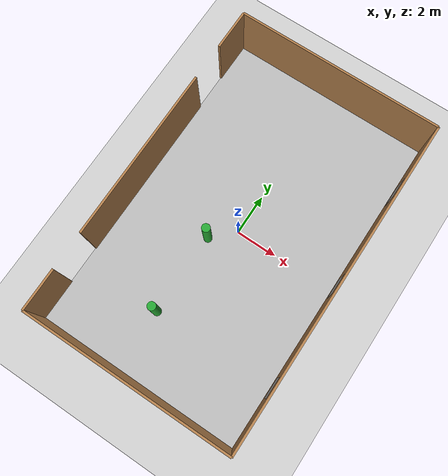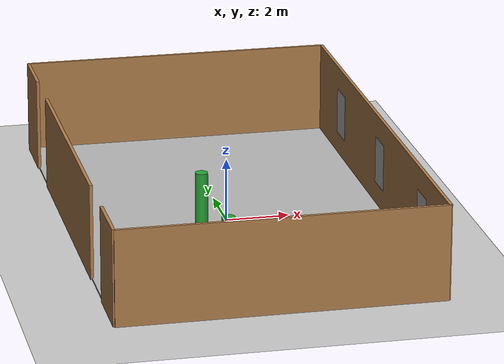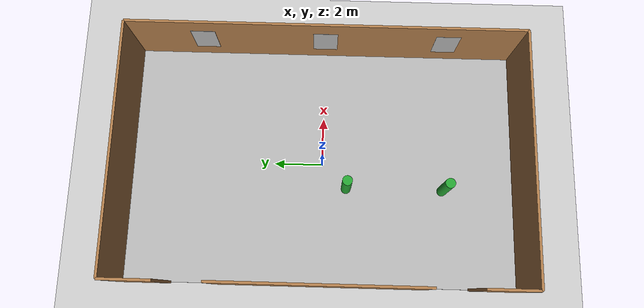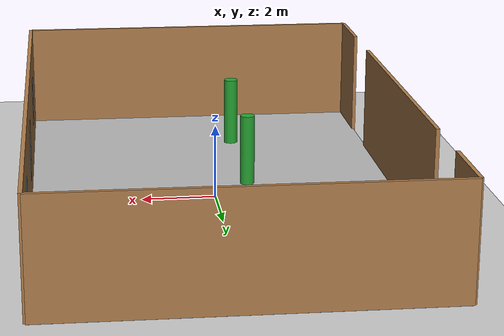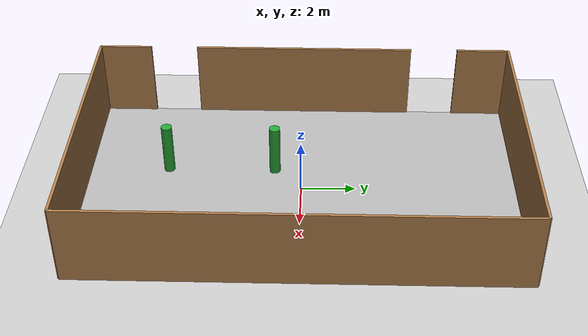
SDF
<sdf version="1.5">
 <world name="default">
  <light type="directional" name="sun">
   <cast_shadows>false</cast_shadows>
   <pose>0 0 100 0 0 0</pose>
   <diffuse>0.8 0.8 0.8 1</diffuse>
   <specular>0.9 0.9 0.9 1</specular>
   <attenuation>
    <range>1000</range>
    <constant>0.9</constant>
    <linear>0.01</linear>
    <quadratic>0.001</quadratic>
   </attenuation>
   <direction>0.2 0.2 -0.9</direction>
  </light>
  <scene><shadows>0</shadows></scene>
  <include><uri>model://ground_plane</uri></include>
  <physics type="ode">
   <gravity>0 0 -9.8066</gravity>
   <ode>
    <solver>
     <type>quick</type>
     <iters>150</iters>
     <sor>1.3</sor>
     <use_dynamic_moi_rescaling>0</use_dynamic_moi_rescaling>
    </solver>
    <constraints>
     <cfm>0.00001</cfm>
     <erp>0.2</erp>
     <contact_max_correcting_vel>1000</contact_max_correcting_vel>
     <contact_surface_layer>0.01</contact_surface_layer>
    </constraints>
   </ode>
   <max_step_size>0.004</max_step_size>
   <real_time_factor>1000.0</real_time_factor>
   <real_time_update_rate>250</real_time_update_rate>
   <magnetic_field>6.0e-6 2.3e-5 -4.2e-5</magnetic_field>
  </physics>
  <model name="texture">
   <static>true</static>
   <link name="logo">
    <pose>-0.0 0.01 -0.0 0.0 0 0.0</pose>
    <visual name="visual">
     <cast_shadows>false</cast_shadows>
     <geometry><box><size>10 16 0.1</size></box></geometry>
     <material>
      <script>
       <uri>model://logo_ground/materials/scripts</uri>
       <uri>model://logo_ground/materials/textures</uri>
       <name>Cube/logo_ground</name>
      </script>
     </material>
    </visual>
   </link>
   <link name="poster1">
    <pose>4.95 0 1.5 0 1.57 0</pose>
    <visual name="visual">
     <cast_shadows>false</cast_shadows>
     <geometry><box><size>1.5 1.0 0.01</size></box></geometry>
     <material><script><uri>model://texture/texture.material</uri><name>Poster1</name></script></material>
    </visual>
   </link>
   <link name="poster2">
    <pose>4.95 5 1.5 0 1.57 0</pose>
    <visual name="visual">
     <cast_shadows>false</cast_shadows>
     <geometry><box><size>1.5 1.0 0.01</size></box></geometry>
     <material><script><uri>model://texture/texture.material</uri><name>Poster1</name></script></material>
    </visual>
   </link>
   <link name="poster3">
    <pose>4.95 -5 1.5 0 1.57 0</pose>
    <visual name="visual">
     <cast_shadows>false</cast_shadows>
     <geometry><box><size>1.5 1.0 0.01</size></box></geometry>
     <material><script><uri>model://texture/texture.material</uri><name>Poster1</name></script></material>
    </visual>
   </link>
  </model>
  <model name="room_wall">
   <static>true</static>
   <link name="wall_front">
    <pose>5 0 1.5 0 -0 1.57</pose>
    <inertial><mass>2.0</mass></inertial>
    <collision name="collision"><geometry><box><size>16 0.1 3</size></box></geometry></collision>
    <visual name="visual">
     <geometry><box><size>16 0.1 3</size></box></geometry>
     <material>
      <script><uri>file://media/materials/scripts/gazebo.material</uri><name>Gazebo/Wood</name></script>
      <ambient>1 1 1 1</ambient>
     </material>
    </visual>
   </link>
   <link name="wall_back1">
    <pose>-5 -0 1.5 0 -0 1.57</pose>
    <inertial><mass>2.0</mass></inertial>
    <collision name="collision"><geometry><box><size>8.4 0.1 3</size></box></geometry></collision>
    <visual name="visual">
     <geometry><box><size>8.4 0.1 3</size></box></geometry>
     <material>
      <script><uri>file://media/materials/scripts/gazebo.material</uri><name>Gazebo/Wood</name></script>
      <ambient>1 1 1 1</ambient>
     </material>
    </visual>
   </link>
   <link name="wall_back2">
    <pose>-5 7 1.5 0 -0 1.57</pose>
    <inertial><mass>2.0</mass></inertial>
    <collision name="collision"><geometry><box><size>2 0.1 3</size></box></geometry></collision>
    <visual name="visual">
     <geometry><box><size>2 0.1 3</size></box></geometry>
     <material>
      <script><uri>file://media/materials/scripts/gazebo.material</uri><name>Gazebo/Wood</name></script>
      <ambient>1 1 1 1</ambient>
     </material>
    </visual>
   </link>
   <link name="wall_back3">
    <pose>-5 -7 1.5 0 -0 1.57</pose>
    <inertial><mass>2.0</mass></inertial>
    <collision name="collision"><geometry><box><size>2 0.1 3</size></box></geometry></collision>
    <visual name="visual">
     <geometry><box><size>2 0.1 3</size></box></geometry>
     <material>
      <script><uri>file://media/materials/scripts/gazebo.material</uri><name>Gazebo/Wood</name></script>
      <ambient>1 1 1 1</ambient>
     </material>
    </visual>
   </link>
   <link name="wall_right">
    <pose>-0 -8 1.5 0 -0 0</pose>
    <inertial><mass>2.0</mass></inertial>
    <collision name="collision"><geometry><box><size>10 0.1 3</size></box></geometry></collision>
    <visual name="visual">
     <geometry><box><size>10 0.1 3</size></box></geometry>
     <material>
      <script><uri>file://media/materials/scripts/gazebo.material</uri><name>Gazebo/Wood</name></script>
      <ambient>1 1 1 1</ambient>
     </material>
    </visual>
   </link>
   <link name="wall_left">
    <pose>-0 8 1.5 0 -0 0</pose>
    <inertial><mass>2.0</mass></inertial>
    <collision name="collision"><geometry><box><size>10 0.1 3</size></box></geometry></collision>
    <visual name="visual">
     <geometry><box><size>10 0.1 3</size></box></geometry>
     <material>
      <script><uri>file://media/materials/scripts/gazebo.material</uri><name>Gazebo/Wood</name></script>
      <ambient>1 1 1 1</ambient>
     </material>
    </visual>
   </link>
  </model>
  <model name="obstacle">
   <static>true</static>
   <link name="pillar_1">
    <pose>-1 -1.0 1.0 0 -0 0</pose>
    <visual name="visual">
     <geometry><cylinder><radius>0.2</radius><length>2.0</length></cylinder></geometry>
     <material>
      <script><uri>file://media/materials/scripts/gazebo.material</uri><name>Gazebo/Green</name></script>
     </material>
    </visual>
    <collision name="collision">
     <geometry><cylinder><radius>0.2</radius><length>2.0</length></cylinder></geometry>
    </collision>
   </link>
   <link name="pillar_2">
    <pose>-1 -5.0 1.0 0 -0 0</pose>
    <visual name="visual">
     <geometry><cylinder><radius>0.2</radius><length>2.0</length></cylinder></geometry>
     <material>
      <script><uri>file://media/materials/scripts/gazebo.material</uri><name>Gazebo/Green</name></script>
     </material>
    </visual>
    <collision name="collision">
     <geometry><cylinder><radius>0.2</radius><length>2.0</length></cylinder></geometry>
    </collision>
   </link>
  </model>
 </world>
</sdf>
